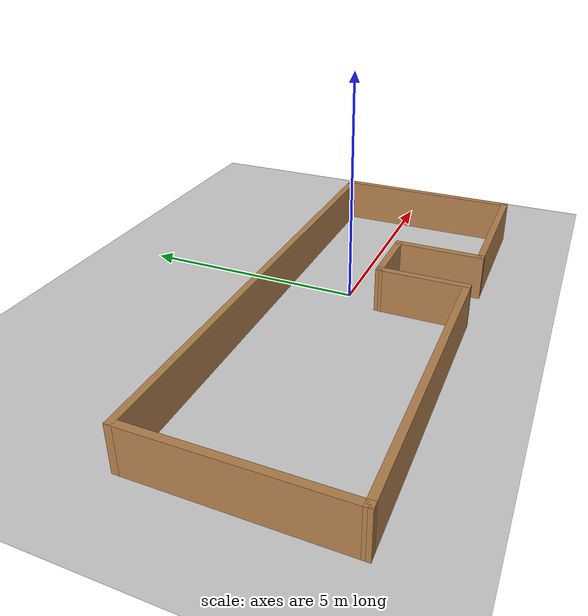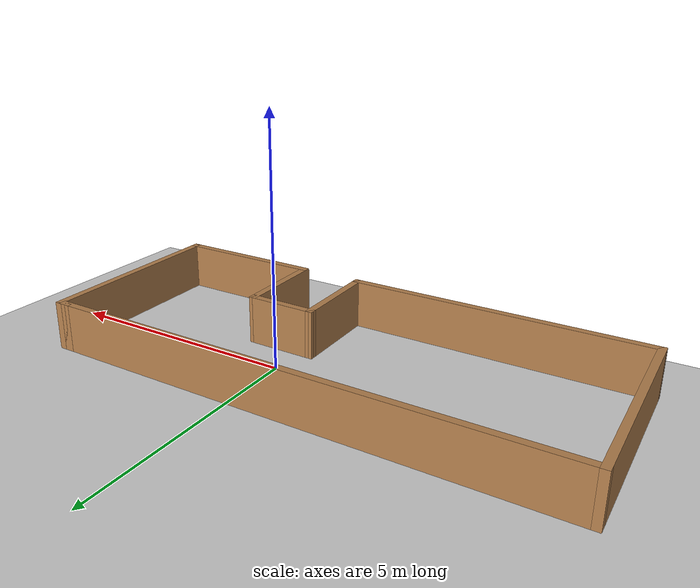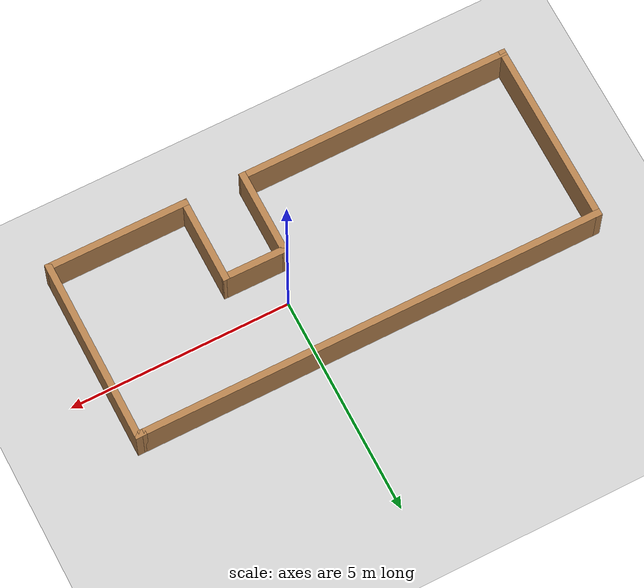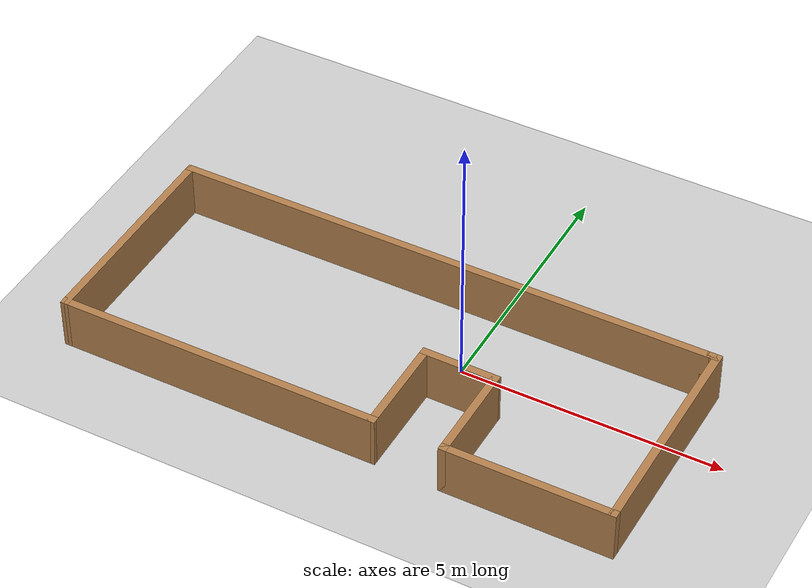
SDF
<sdf version="1.7">
 <world name="default">
  <light name="sun" type="directional">
   <pose>0 0 10 0 -0 0</pose>
   <diffuse>0.8 0.8 0.8 1</diffuse>
   <specular>0.2 0.2 0.2 1</specular>
   <attenuation>
    <range>1000</range>
    <constant>0.9</constant>
    <linear>0.01</linear>
    <quadratic>0.001</quadratic>
   </attenuation>
   <direction>-0.5 0.1 -0.9</direction>
   <spot><inner_angle>0</inner_angle><outer_angle>0</outer_angle><falloff>0</falloff></spot>
  </light>
  <model name="ground_plane">
   <static>1</static>
   <link name="link">
    <collision name="collision">
     <geometry><plane><normal>0 0 1</normal><size>100 100</size></plane></geometry>
     <surface>
      <contact><collide_bitmask>65535</collide_bitmask></contact>
      <friction><ode><mu>100</mu><mu2>50</mu2></ode></friction>
     </surface>
    </collision>
    <visual name="visual">
     <cast_shadows>0</cast_shadows>
     <geometry><plane><normal>0 0 1</normal><size>100 100</size></plane></geometry>
     <material>
      <script><uri>file://media/materials/scripts/gazebo.material</uri><name>Gazebo/Grey</name></script>
     </material>
    </visual>
   </link>
  </model>
  <gravity>0 0 -9.8</gravity>
  <magnetic_field>6e-06 2.3e-05 -4.2e-05</magnetic_field>
  <atmosphere type="adiabatic"/>
  <physics type="ode">
   <max_step_size>0.001</max_step_size>
   <real_time_factor>1</real_time_factor>
   <real_time_update_rate>1000</real_time_update_rate>
  </physics>
  <scene><ambient>0.4 0.4 0.4 1</ambient><background>0.7 0.7 0.7 1</background><shadows>1</shadows></scene>
  <spherical_coordinates>
   <surface_model>EARTH_WGS84</surface_model>
   <latitude_deg>0</latitude_deg>
   <longitude_deg>0</longitude_deg>
   <elevation>0</elevation>
   <heading_deg>0</heading_deg>
  </spherical_coordinates>
  <model name="world_2">
   <pose>-1.12813 -0.23489 0 0 -0 0</pose>
   <link name="Wall_10">
    <collision name="Wall_10_Collision">
     <geometry><box><size>3.25 0.15 1</size></box></geometry>
     <pose>0 0 0.5 0 -0 0</pose>
    </collision>
    <visual name="Wall_10_Visual">
     <pose>0 0 0.5 0 -0 0</pose>
     <geometry><box><size>3.25 0.15 1</size></box></geometry>
     <material>
      <script><uri>file://media/materials/scripts/gazebo.material</uri><name>Gazebo/Wood</name></script>
      <ambient>0.996078 0.47451 0.0196078 1</ambient>
     </material>
     <meta><layer>0</layer></meta>
    </visual>
    <pose>3.72506 -2.39244 0 0 -0 0</pose>
   </link>
   <link name="Wall_12">
    <collision name="Wall_12_Collision">
     <geometry><box><size>0.25 0.15 1</size></box></geometry>
     <pose>0 0 0.5 0 -0 0</pose>
    </collision>
    <visual name="Wall_12_Visual">
     <pose>0 0 0.5 0 -0 0</pose>
     <geometry><box><size>0.25 0.15 1</size></box></geometry>
     <material>
      <script><uri>file://media/materials/scripts/gazebo.material</uri><name>Gazebo/Wood</name></script>
      <ambient>0.996078 0.47451 0.0196078 1</ambient>
     </material>
     <meta><layer>0</layer></meta>
    </visual>
    <pose>5.12506 1.70756 0 0 -0 0</pose>
   </link>
   <link name="Wall_13">
    <collision name="Wall_13_Collision">
     <geometry><box><size>0.25 0.15 1</size></box></geometry>
     <pose>0 0 0.5 0 -0 0</pose>
    </collision>
    <visual name="Wall_13_Visual">
     <pose>0 0 0.5 0 -0 0</pose>
     <geometry><box><size>0.25 0.15 1</size></box></geometry>
     <material>
      <script><uri>file://media/materials/scripts/gazebo.material</uri><name>Gazebo/Wood</name></script>
      <ambient>0.996078 0.47451 0.0196078 1</ambient>
     </material>
     <meta><layer>0</layer></meta>
    </visual>
    <pose>5.22506 1.70756 0 0 -0 0</pose>
   </link>
   <link name="Wall_14">
    <collision name="Wall_14_Collision">
     <geometry><box><size>4.25 0.15 1</size></box></geometry>
     <pose>0 0 0.5 0 -0 0</pose>
    </collision>
    <visual name="Wall_14_Visual">
     <pose>0 0 0.5 0 -0 0</pose>
     <geometry><box><size>4.25 0.15 1</size></box></geometry>
     <material>
      <script><uri>file://media/materials/scripts/gazebo.material</uri><name>Gazebo/Wood</name></script>
      <ambient>0.996078 0.47451 0.0196078 1</ambient>
     </material>
     <meta><layer>0</layer></meta>
    </visual>
    <pose>5.27506 -0.342438 0 0 -0 -1.5708</pose>
   </link>
   <link name="Wall_3">
    <collision name="Wall_3_Collision">
     <geometry><box><size>10.5 0.15 1</size></box></geometry>
     <pose>0 0 0.5 0 -0 0</pose>
    </collision>
    <visual name="Wall_3_Visual">
     <pose>0 0 0.5 0 -0 0</pose>
     <geometry><box><size>10.5 0.15 1</size></box></geometry>
     <material>
      <script><uri>file://media/materials/scripts/gazebo.material</uri><name>Gazebo/Wood</name></script>
      <ambient>0.996078 0.47451 0.0196078 1</ambient>
     </material>
     <meta><layer>0</layer></meta>
    </visual>
    <pose>-0.099941 1.70756 0 0 -0 0</pose>
   </link>
   <link name="Wall_5">
    <collision name="Wall_5_Collision">
     <geometry><box><size>4.25 0.15 1</size></box></geometry>
     <pose>0 0 0.5 0 -0 0</pose>
    </collision>
    <visual name="Wall_5_Visual">
     <pose>0 0 0.5 0 -0 0</pose>
     <geometry><box><size>4.25 0.15 1</size></box></geometry>
     <material>
      <script><uri>file://media/materials/scripts/gazebo.material</uri><name>Gazebo/Wood</name></script>
      <ambient>0.996078 0.47451 0.0196078 1</ambient>
     </material>
     <meta><layer>0</layer></meta>
    </visual>
    <pose>-5.27494 -0.342438 0 0 -0 -1.5708</pose>
   </link>
   <link name="Wall_6">
    <collision name="Wall_6_Collision">
     <geometry><box><size>6.25 0.15 1</size></box></geometry>
     <pose>0 0 0.5 0 -0 0</pose>
    </collision>
    <visual name="Wall_6_Visual">
     <pose>0 0 0.5 0 -0 0</pose>
     <geometry><box><size>6.25 0.15 1</size></box></geometry>
     <material>
      <script><uri>file://media/materials/scripts/gazebo.material</uri><name>Gazebo/Wood</name></script>
      <ambient>0.996078 0.47451 0.0196078 1</ambient>
     </material>
     <meta><layer>0</layer></meta>
    </visual>
    <pose>-2.22494 -2.38744 0 0 -0 0.001639</pose>
   </link>
   <link name="Wall_7">
    <collision name="Wall_7_Collision">
     <geometry><box><size>2 0.15 1</size></box></geometry>
     <pose>0 0 0.5 0 -0 0</pose>
    </collision>
    <visual name="Wall_7_Visual">
     <pose>0 0 0.5 0 -0 0</pose>
     <geometry><box><size>2 0.15 1</size></box></geometry>
     <material>
      <script><uri>file://media/materials/scripts/gazebo.material</uri><name>Gazebo/Wood</name></script>
      <ambient>0.996078 0.47451 0.0196078 1</ambient>
     </material>
     <meta><layer>0</layer></meta>
    </visual>
    <pose>0.825059 -1.45744 0 0 -0 1.5708</pose>
   </link>
   <link name="Wall_8">
    <collision name="Wall_8_Collision">
     <geometry><box><size>1.5 0.15 1</size></box></geometry>
     <pose>0 0 0.5 0 -0 0</pose>
    </collision>
    <visual name="Wall_8_Visual">
     <pose>0 0 0.5 0 -0 0</pose>
     <geometry><box><size>1.5 0.15 1</size></box></geometry>
     <material>
      <script><uri>file://media/materials/scripts/gazebo.material</uri><name>Gazebo/Wood</name></script>
      <ambient>0.996078 0.47451 0.0196078 1</ambient>
     </material>
     <meta><layer>0</layer></meta>
    </visual>
    <pose>1.50006 -0.537439 0 0 -0 -0.007407</pose>
   </link>
   <link name="Wall_9">
    <collision name="Wall_9_Collision">
     <geometry><box><size>2 0.15 1</size></box></geometry>
     <pose>0 0 0.5 0 -0 0</pose>
    </collision>
    <visual name="Wall_9_Visual">
     <pose>0 0 0.5 0 -0 0</pose>
     <geometry><box><size>2 0.15 1</size></box></geometry>
     <material>
      <script><uri>file://media/materials/scripts/gazebo.material</uri><name>Gazebo/Wood</name></script>
      <ambient>0.996078 0.47451 0.0196078 1</ambient>
     </material>
     <meta><layer>0</layer></meta>
    </visual>
    <pose>2.17506 -1.46744 0 0 -0 -1.5708</pose>
   </link>
   <static>1</static>
  </model>
 </world>
</sdf>
